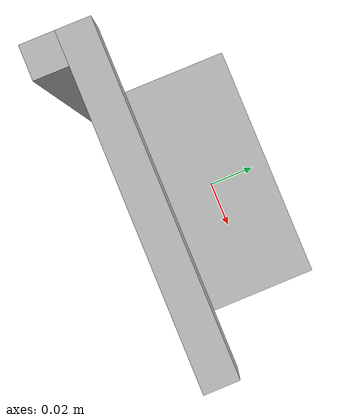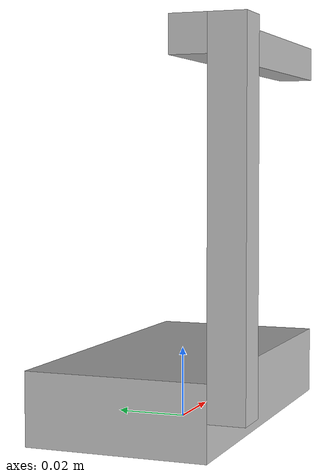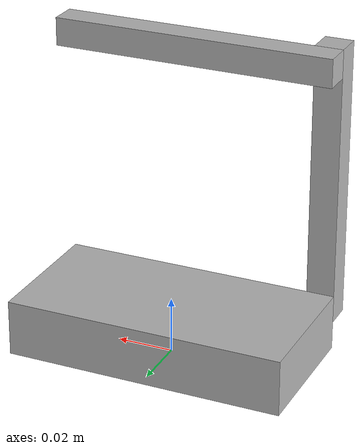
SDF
<sdf version='1.6'>
  <model name='sample1'>
    <link name='base_link'>
      <pose frame=''>0 0 0 0 -0 0</pose>
      <inertial>
        <pose frame=''>0 0 0.01 0 -0 0</pose>
        <mass>0.1</mass>
        <inertia>
          <ixx>2.5e-05</ixx>
          <ixy>0</ixy>
          <ixz>0</ixz>
          <iyy>9e-05</iyy>
          <iyz>0</iyz>
          <izz>0.000105</izz>
        </inertia>
      </inertial>
      <collision name='base_link_fixed_joint_lump__collision_collision'>
        <pose frame=''>0 0 0.01 0 -0 0</pose>
        <geometry>
          <box>
            <size>0.1 0.05 0.02</size>
          </box>
        </geometry>
      </collision>
      <visual name='base_link_fixed_joint_lump__visual_visual'>
        <pose frame=''>0 0 0.01 0 -0 0</pose>
        <geometry>
          <box>
            <size>0.1 0.05 0.02</size>
          </box>
        </geometry>
      </visual>
      <gravity>1</gravity>
      <velocity_decay/>
      <self_collide>1</self_collide>
    </link>
    <link name='left'>
      <pose frame=''>-0.045 -0.025 0.015 0 -0 0</pose>
      <inertial>
        <pose frame=''>0 -0.005 0.045 0 -0 0</pose>
        <mass>0.01</mass>
        <inertia>
          <ixx>8.5e-06</ixx>
          <ixy>0</ixy>
          <ixz>0</ixz>
          <iyy>8.5e-06</iyy>
          <iyz>0</iyz>
          <izz>2e-07</izz>
        </inertia>
      </inertial>
      <collision name='left_fixed_joint_lump__collision_collision'>
        <pose frame=''>0 -0.005 0.045 0 -0 0</pose>
        <geometry>
          <box>
            <size>0.01 0.01 0.1</size>
          </box>
        </geometry>
      </collision>
      <visual name='left_fixed_joint_lump__visual_visual'>
        <pose frame=''>0 -0.005 0.045 0 -0 0</pose>
        <geometry>
          <box>
            <size>0.01 0.01 0.1</size>
          </box>
        </geometry>
      </visual>
      <gravity>1</gravity>
      <velocity_decay/>
      <self_collide>1</self_collide>
    </link>
    <joint name='ld_hinge' type='revolute'>
      <child>left</child>
      <parent>base_link</parent>
      <axis>
        <xyz>0 1 0</xyz>
        <limit>
          <lower>-1.5707</lower>
          <upper>1.5707</upper>
          <effort>0.4</effort>
          <velocity>1.5707</velocity>
        </limit>
        <dynamics>
          <spring_reference>0</spring_reference>
          <spring_stiffness>0</spring_stiffness>
        </dynamics>
        <use_parent_model_frame>1</use_parent_model_frame>
      </axis>
    </joint>
    <link name='top'>
      <pose frame=''>-0.045 -0.025 0.105 0 -0 0</pose>
      <inertial>
        <pose frame=''>0.045 0.005 0 0 -0 0</pose>
        <mass>0.01</mass>
        <inertia>
          <ixx>2e-07</ixx>
          <ixy>0</ixy>
          <ixz>0</ixz>
          <iyy>8.5e-06</iyy>
          <iyz>0</iyz>
          <izz>8.5e-06</izz>
        </inertia>
      </inertial>
      <collision name='top_fixed_joint_lump__collision_collision'>
        <pose frame=''>0.045 0.005 0 0 -0 0</pose>
        <geometry>
          <box>
            <size>0.1 0.01 0.01</size>
          </box>
        </geometry>
      </collision>
      <visual name='top_fixed_joint_lump__visual_visual'>
        <pose frame=''>0.045 0.005 0 0 -0 0</pose>
        <geometry>
          <box>
            <size>0.1 0.01 0.01</size>
          </box>
        </geometry>
      </visual>
      <gravity>1</gravity>
      <velocity_decay/>
      <self_collide>1</self_collide>
    </link>
    <joint name='lu_hinge' type='revolute'>
      <child>top</child>
      <parent>left</parent>
      <axis>
        <xyz>0 1 0</xyz>
        <limit>
          <lower>-1.5707</lower>
          <upper>1.5707</upper>
          <effort>0</effort>
          <velocity>1.5707</velocity>
        </limit>
        <dynamics>
          <spring_reference>0</spring_reference>
          <spring_stiffness>0</spring_stiffness>
        </dynamics>
        <use_parent_model_frame>1</use_parent_model_frame>
      </axis>
    </joint>
    <static>0</static>
    <plugin name='gazebo_ros_control' filename='libgazebo_ros_control.so'>
      <robotNamespace>/sample1</robotNamespace>
    </plugin>
  </model>
</sdf>
